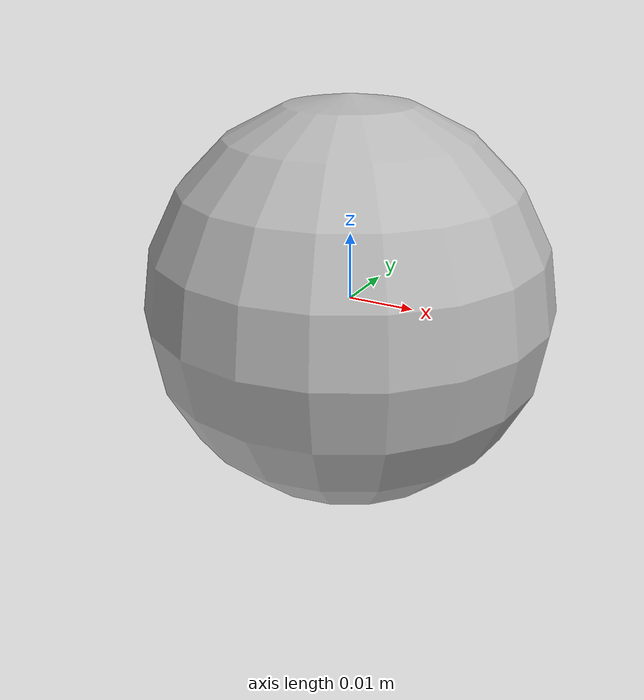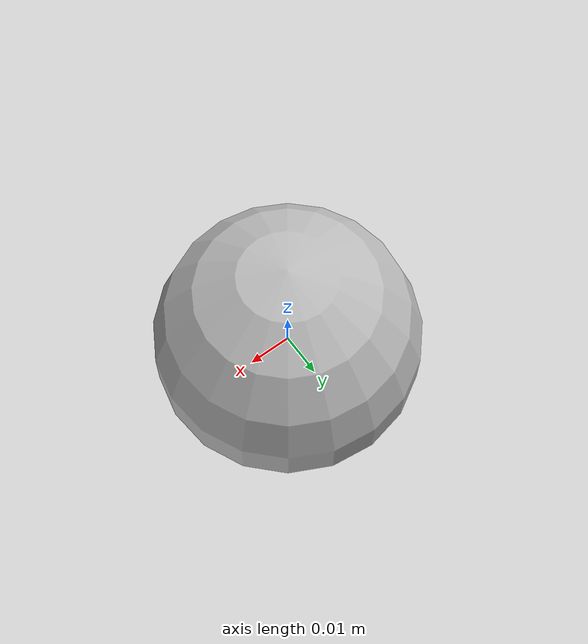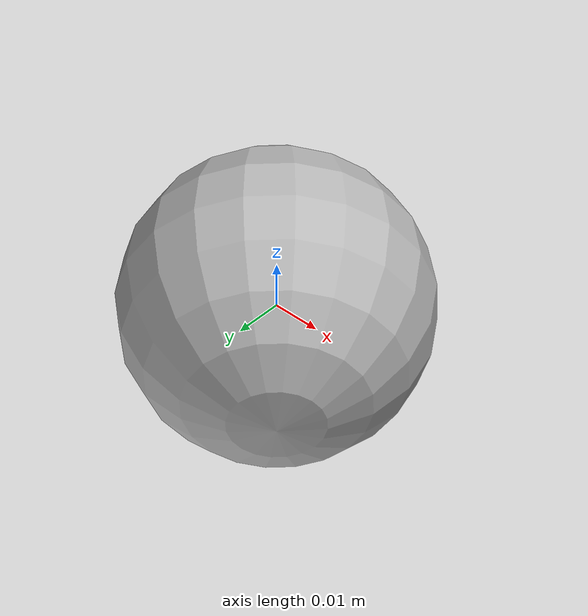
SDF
<sdf version="1.7">
  <model name="sd_mesh">
    <static>false</static>
    <link name="mass_x0_y0">
      <inertial>
        <pose>0.0 0.0 0 0 0 0</pose>
        <mass>5.025</mass>
        <inertia>
          <ixx>1e-5</ixx>
          <ixy>0</ixy>
          <ixz>0</ixz>
          <iyx>0</iyx>
          <iyy>1e-5</iyy>
          <iyz>0</iyz>
          <izx>0</izx>
          <izy>0</izy>
          <izz>1e-5</izz>
        </inertia>
      </inertial>
      <collision name="collision_x0_y0">
        <geometry>
          <sphere>
            <radius>0.03</radius>
          </sphere>
        </geometry>
      </collision>
      <visual name="visual_x0_y0">
        <geometry>
          <sphere>
            <radius>0.03</radius>
          </sphere>
        </geometry>
      </visual>
    </link>
    <link name="mass_x1_y0">
      <inertial>
        <pose>0.4 0.0 0 0 0 0</pose>
        <mass>5.025</mass>
        <inertia>
          <ixx>1e-5</ixx>
          <ixy>0</ixy>
          <ixz>0</ixz>
          <iyx>0</iyx>
          <iyy>1e-5</iyy>
          <iyz>0</iyz>
          <izx>0</izx>
          <izy>0</izy>
          <izz>1e-5</izz>
        </inertia>
      </inertial>
      <collision name="collision_x1_y0">
        <geometry>
          <sphere>
            <radius>0.03</radius>
          </sphere>
        </geometry>
      </collision>
      <visual name="visual_x1_y0">
        <geometry>
          <sphere>
            <radius>0.03</radius>
          </sphere>
        </geometry>
      </visual>
    </link>
    <link name="mass_x0_y1">
      <inertial>
        <pose>0.0 0.4 0 0 0 0</pose>
        <mass>5.025</mass>
        <inertia>
          <ixx>1e-5</ixx>
          <ixy>0</ixy>
          <ixz>0</ixz>
          <iyx>0</iyx>
          <iyy>1e-5</iyy>
          <iyz>0</iyz>
          <izx>0</izx>
          <izy>0</izy>
          <izz>1e-5</izz>
        </inertia>
      </inertial>
      <collision name="collision_x0_y1">
        <geometry>
          <sphere>
            <radius>0.03</radius>
          </sphere>
        </geometry>
      </collision>
      <visual name="visual_x0_y1">
        <geometry>
          <sphere>
            <radius>0.03</radius>
          </sphere>
        </geometry>
      </visual>
    </link>
    <link name="mass_x1_y1">
      <inertial>
        <pose>0.4 0.4 0 0 0 0</pose>
        <mass>5.025</mass>
        <inertia>
          <ixx>1e-5</ixx>
          <ixy>0</ixy>
          <ixz>0</ixz>
          <iyx>0</iyx>
          <iyy>1e-5</iyy>
          <iyz>0</iyz>
          <izx>0</izx>
          <izy>0</izy>
          <izz>1e-5</izz>
        </inertia>
      </inertial>
      <collision name="collision_x1_y1">
        <geometry>
          <sphere>
            <radius>0.03</radius>
          </sphere>
        </geometry>
      </collision>
      <visual name="visual_x1_y1">
        <geometry>
          <sphere>
            <radius>0.03</radius>
          </sphere>
        </geometry>
      </visual>
    </link>
  </model>
</sdf>
